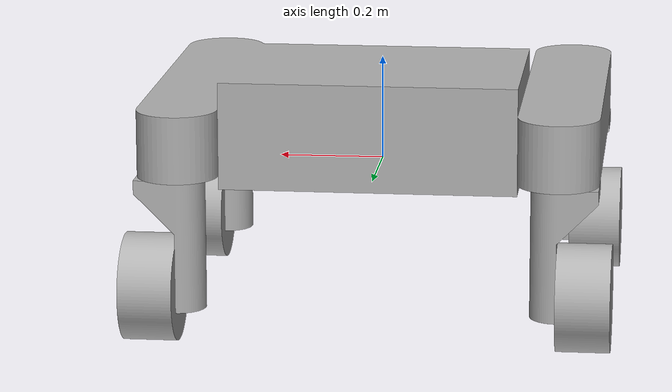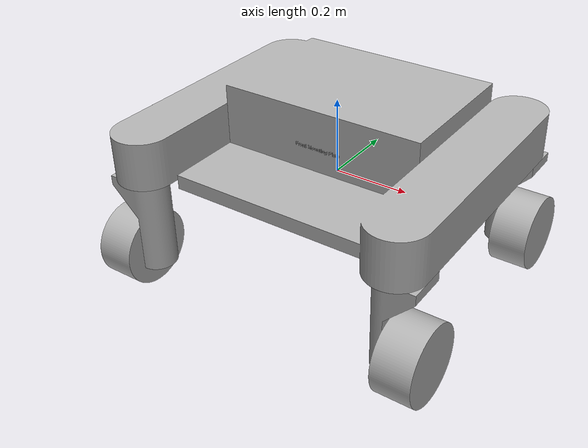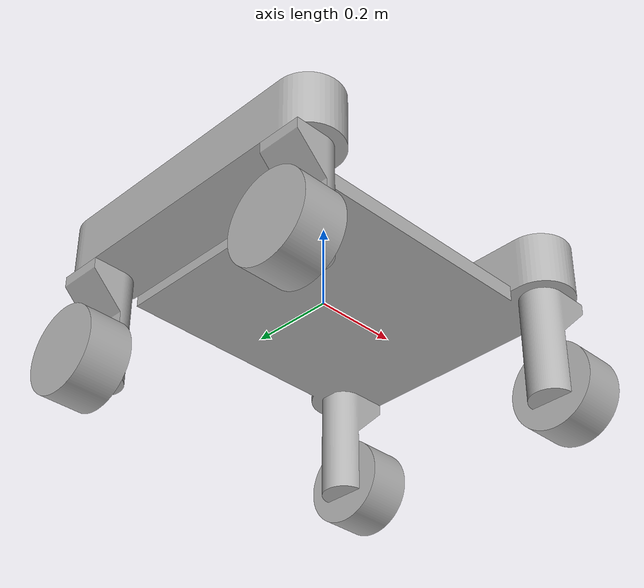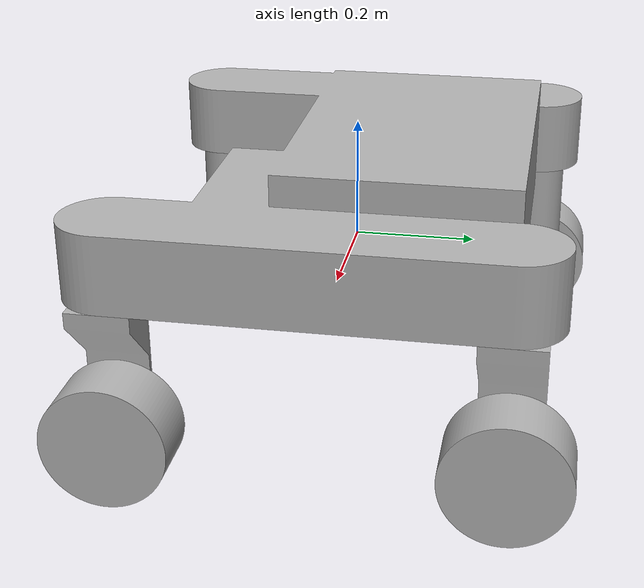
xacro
<?xml version="1.0" ?>
<robot name="rover_test" xmlns:xacro="http://www.ros.org/wiki/xacro">

<xacro:include filename="$(find rover_test_description)/urdf/materials.xacro" />
<xacro:include filename="$(find rover_test_description)/urdf/rover_test.gazebo" />

<link name="base_link">
  <inertial>
    <origin xyz="1.7662172446492366e-08 0.04237215152825712 0.09216107589120397" rpy="0 0 0"/>
    <mass value="595.1849542563896"/>
    <inertia ixx="19.500193" iyy="39.83973" izz="55.970633" ixy="1e-06" iyz="-0.807843" ixz="0.0"/>
  </inertial>
  <visual>
    <origin xyz="0 0 0" rpy="0 0 0"/>
    <geometry>
      <mesh filename="file://$(find rover_test_description)/meshes/base_link.stl" scale="0.001 0.001 0.001"/>
    </geometry>
    <material name="silver"/>
  </visual>
  <collision>
    <origin xyz="0 0 0" rpy="0 0 0"/>
    <geometry>
      <mesh filename="file://$(find rover_test_description)/meshes/base_link.stl" scale="0.001 0.001 0.001"/>
    </geometry>
  </collision>
</link>

<link name="front_left_wheel_link">
  <inertial>
    <origin xyz="0.0507999999999999 -1.1102230246251565e-16 5.551115123125783e-17" rpy="0 0 0"/>
    <mass value="25.864295489856012"/>
    <inertia ixx="0.133493" iyy="0.088995" izz="0.088995" ixy="-0.0" iyz="0.0" ixz="0.0"/>
  </inertial>
  <visual>
    <origin xyz="-0.3556 0.3175 0.1905" rpy="0 0 0"/>
    <geometry>
      <mesh filename="file://$(find rover_test_description)/meshes/wheel1_1.stl" scale="0.001 0.001 0.001"/>
    </geometry>
    <material name="silver"/>
  </visual>
  <collision>
    <origin xyz="-0.3556 0.3175 0.1905" rpy="0 0 0"/>
    <geometry>
      <mesh filename="file://$(find rover_test_description)/meshes/wheel1_1.stl" scale="0.001 0.001 0.001"/>
    </geometry>
  </collision>
</link>

<link name="rear_left_wheel_link">
  <inertial>
    <origin xyz="0.050799999999999956 1.1102230246251565e-16 3.885780586188048e-16" rpy="0 0 0"/>
    <mass value="25.864295489856012"/>
    <inertia ixx="0.133493" iyy="0.088995" izz="0.088995" ixy="0.0" iyz="0.0" ixz="0.0"/>
  </inertial>
  <visual>
    <origin xyz="-0.3556 -0.2921 0.1905" rpy="0 0 0"/>
    <geometry>
      <mesh filename="file://$(find rover_test_description)/meshes/wheel3_1.stl" scale="0.001 0.001 0.001"/>
    </geometry>
    <material name="silver"/>
  </visual>
  <collision>
    <origin xyz="-0.3556 -0.2921 0.1905" rpy="0 0 0"/>
    <geometry>
      <mesh filename="file://$(find rover_test_description)/meshes/wheel3_1.stl" scale="0.001 0.001 0.001"/>
    </geometry>
  </collision>
</link>

<link name="front_right_wheel_link">
  <inertial>
    <origin xyz="-0.050799999999999845 -3.6637359812630166e-15 -2.7755575615628914e-16" rpy="0 0 0"/>
    <mass value="25.864295489856012"/>
    <inertia ixx="0.133493" iyy="0.088995" izz="0.088995" ixy="0.0" iyz="-0.0" ixz="0.0"/>
  </inertial>
  <visual>
    <origin xyz="0.3556 0.3175 0.1905" rpy="0 0 0"/>
    <geometry>
      <mesh filename="file://$(find rover_test_description)/meshes/wheel2_1.stl" scale="0.001 0.001 0.001"/>
    </geometry>
    <material name="silver"/>
  </visual>
  <collision>
    <origin xyz="0.3556 0.3175 0.1905" rpy="0 0 0"/>
    <geometry>
      <mesh filename="file://$(find rover_test_description)/meshes/wheel2_1.stl" scale="0.001 0.001 0.001"/>
    </geometry>
  </collision>
</link>

<link name="rear_right_wheel_link">
  <inertial>
    <origin xyz="-0.05080000000000029 -3.7192471324942744e-15 1.6653345369377348e-16" rpy="0 0 0"/>
    <mass value="25.864295489856012"/>
    <inertia ixx="0.133493" iyy="0.088995" izz="0.088995" ixy="0.0" iyz="0.0" ixz="0.0"/>
  </inertial>
  <visual>
    <origin xyz="0.3556 -0.2921 0.1905" rpy="0 0 0"/>
    <geometry>
      <mesh filename="file://$(find rover_test_description)/meshes/wheel4_1.stl" scale="0.001 0.001 0.001"/>
    </geometry>
    <material name="silver"/>
  </visual>
  <collision>
    <origin xyz="0.3556 -0.2921 0.1905" rpy="0 0 0"/>
    <geometry>
      <mesh filename="file://$(find rover_test_description)/meshes/wheel4_1.stl" scale="0.001 0.001 0.001"/>
    </geometry>
  </collision>
</link>

<link name="front_left_steer_link">
  <inertial>
    <origin xyz="-0.004588209054589121 -1.1102230246251565e-16 -0.0951512261261479" rpy="0 0 0"/>
    <mass value="11.71442300300121"/>
    <inertia ixx="0.072711" iyy="0.074344" izz="0.018661" ixy="0.0" iyz="-0.0" ixz="-0.013033"/>
  </inertial>
  <visual>
    <origin xyz="-0.3556 0.3175 -0.0254" rpy="0 0 0"/>
    <geometry>
      <mesh filename="file://$(find rover_test_description)/meshes/mount1_1.stl" scale="0.001 0.001 0.001"/>
    </geometry>
    <material name="silver"/>
  </visual>
  <collision>
    <origin xyz="-0.3556 0.3175 -0.0254" rpy="0 0 0"/>
    <geometry>
      <mesh filename="file://$(find rover_test_description)/meshes/mount1_1.stl" scale="0.001 0.001 0.001"/>
    </geometry>
  </collision>
</link>

<link name="front_right_steer_link">
  <inertial>
    <origin xyz="0.00458820905458901 5.551115123125783e-17 -0.09515122612614813" rpy="0 0 0"/>
    <mass value="11.714423003001206"/>
    <inertia ixx="0.072711" iyy="0.074344" izz="0.018661" ixy="0.0" iyz="0.0" ixz="0.013033"/>
  </inertial>
  <visual>
    <origin xyz="0.3556 0.3175 -0.0254" rpy="0 0 0"/>
    <geometry>
      <mesh filename="file://$(find rover_test_description)/meshes/mount2_1.stl" scale="0.001 0.001 0.001"/>
    </geometry>
    <material name="silver"/>
  </visual>
  <collision>
    <origin xyz="0.3556 0.3175 -0.0254" rpy="0 0 0"/>
    <geometry>
      <mesh filename="file://$(find rover_test_description)/meshes/mount2_1.stl" scale="0.001 0.001 0.001"/>
    </geometry>
  </collision>
</link>

<link name="rear_left_steer_link">
  <inertial>
    <origin xyz="-0.00458820905458901 1.1102230246251565e-16 -0.09515122612614782" rpy="0 0 0"/>
    <mass value="11.71442300300121"/>
    <inertia ixx="0.072711" iyy="0.074344" izz="0.018661" ixy="0.0" iyz="0.0" ixz="-0.013033"/>
  </inertial>
  <visual>
    <origin xyz="-0.3556 -0.2921 -0.0254" rpy="0 0 0"/>
    <geometry>
      <mesh filename="file://$(find rover_test_description)/meshes/mount3_1.stl" scale="0.001 0.001 0.001"/>
    </geometry>
    <material name="silver"/>
  </visual>
  <collision>
    <origin xyz="-0.3556 -0.2921 -0.0254" rpy="0 0 0"/>
    <geometry>
      <mesh filename="file://$(find rover_test_description)/meshes/mount3_1.stl" scale="0.001 0.001 0.001"/>
    </geometry>
  </collision>
</link>

<link name="rear_right_steer_link">
  <inertial>
    <origin xyz="0.004588209054588566 -5.551115123125783e-17 -0.09515122612614793" rpy="0 0 0"/>
    <mass value="11.71442300300121"/>
    <inertia ixx="0.072711" iyy="0.074344" izz="0.018661" ixy="0.0" iyz="0.0" ixz="0.013033"/>
  </inertial>
  <visual>
    <origin xyz="0.3556 -0.2921 -0.0254" rpy="0 0 0"/>
    <geometry>
      <mesh filename="file://$(find rover_test_description)/meshes/mount4_1.stl" scale="0.001 0.001 0.001"/>
    </geometry>
    <material name="silver"/>
  </visual>
  <collision>
    <origin xyz="0.3556 -0.2921 -0.0254" rpy="0 0 0"/>
    <geometry>
      <mesh filename="file://$(find rover_test_description)/meshes/mount4_1.stl" scale="0.001 0.001 0.001"/>
    </geometry>
  </collision>
</link>

<joint name="front_left_wheel_joint" type="continuous">
  <origin xyz="0.0 0.0 -0.2159" rpy="0 0 0"/>
  <parent link="front_left_steer_link"/>
  <child link="front_left_wheel_link"/>
  <axis xyz="1.0 0.0 0.0"/>
</joint>

<joint name="rear_left_wheel_joint" type="continuous">
  <origin xyz="0.0 0.0 -0.2159" rpy="0 0 0"/>
  <parent link="rear_left_steer_link"/>
  <child link="rear_left_wheel_link"/>
  <axis xyz="1.0 0.0 0.0"/>
</joint>

<joint name="front_right_wheel_joint" type="continuous">
  <origin xyz="0.0 0.0 -0.2159" rpy="0 0 0"/>
  <parent link="front_right_steer_link"/>
  <child link="front_right_wheel_link"/>
  <axis xyz="1.0 0.0 0.0"/>
</joint>

<joint name="rear_right_wheel_joint" type="continuous">
  <origin xyz="0.0 0.0 -0.2159" rpy="0 0 0"/>
  <parent link="rear_right_steer_link"/>
  <child link="rear_right_wheel_link"/>
  <axis xyz="1.0 0.0 0.0"/>
</joint>

<joint name="front_left_steer_joint" type="continuous">
  <origin xyz="0.3556 -0.3175 0.0254" rpy="0 0 0"/>
  <parent link="base_link"/>
  <child link="front_left_steer_link"/>
  <axis xyz="0.0 0.0 1.0"/>
</joint>

<joint name="front_right_steer_joint" type="continuous">
  <origin xyz="-0.3556 -0.3175 0.0254" rpy="0 0 0"/>
  <parent link="base_link"/>
  <child link="front_right_steer_link"/>
  <axis xyz="0.0 0.0 1.0"/>
</joint>

<joint name="rear_left_steer_joint" type="continuous">
  <origin xyz="0.3556 0.2921 0.0254" rpy="0 0 0"/>
  <parent link="base_link"/>
  <child link="rear_left_steer_link"/>
  <axis xyz="0.0 0.0 1.0"/>
</joint>

<joint name="rear_right_steer_joint" type="continuous">
  <origin xyz="-0.3556 0.2921 0.0254" rpy="0 0 0"/>
  <parent link="base_link"/>
  <child link="rear_right_steer_link"/>
  <axis xyz="0.0 0.0 1.0"/>
</joint>

<xacro:macro name="steer_ros2_control" params="prefix">
  <joint name="${prefix}_steer_joint">
    <command_interface name="position"/>
    <state_interface name="position"/>
    <state_interface name="velocity"/>
  </joint>
</xacro:macro>

<xacro:macro name="wheel_ros2_control" params="prefix">
  <joint name="${prefix}_wheel_joint">
    <command_interface name="velocity"/>
    <state_interface name="velocity"/>
    <state_interface name="position"/>
  </joint>
</xacro:macro>

<ros2_control name="gz_ros2_control_system" type="system">
  <hardware>
    <plugin>gz_ros2_control/GazeboSimSystem</plugin>
  </hardware>
  <xacro:steer_ros2_control prefix="rear_left"/>
  <xacro:wheel_ros2_control prefix="rear_left"/>
  <xacro:steer_ros2_control prefix="front_left"/>
  <xacro:wheel_ros2_control prefix="front_left"/>
  <xacro:steer_ros2_control prefix="rear_right"/>
  <xacro:wheel_ros2_control prefix="rear_right"/>
  <xacro:steer_ros2_control prefix="front_right"/>
  <xacro:wheel_ros2_control prefix="front_right"/>
</ros2_control>

<gazebo>
  <plugin filename="gz_ros2_control-system" name="gz_ros2_control::GazeboSimROS2ControlPlugin">
    <parameters>$(find rover_test_description)/config/rover_test_controllers.yaml</parameters>
  </plugin>
</gazebo>

</robot>

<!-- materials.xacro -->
<robot name="rover_test" xmlns:xacro="http://www.ros.org/wiki/xacro" >

<material name="silver">
  <color rgba="0.700 0.700 0.700 1.000"/>
</material>

</robot>

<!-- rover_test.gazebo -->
<robot name="rover_test" xmlns:xacro="http://www.ros.org/wiki/xacro" >

<xacro:property name="body_color" value="Gazebo/Silver" />

<gazebo reference="base_link">
  <material>${body_color}</material>
  <mu1>0.2</mu1>
  <mu2>0.2</mu2>
  <self_collide>true</self_collide>
  <gravity>true</gravity>
</gazebo>

<xacro:macro name="module_surface" params="prefix">
  <gazebo reference="${prefix}_steer_link">
    <material>${body_color}</material>
    <mu1>0.2</mu1>
    <mu2>0.2</mu2>
    <self_collide>true</self_collide>
  </gazebo>
  <gazebo reference="${prefix}_wheel_link">
    <material>${body_color}</material>
    <mu1>0.2</mu1>
    <mu2>0.2</mu2>
    <self_collide>true</self_collide>
  </gazebo>
</xacro:macro>

<xacro:module_surface prefix="rear_left"/>
<xacro:module_surface prefix="front_left"/>
<xacro:module_surface prefix="rear_right"/>
<xacro:module_surface prefix="front_right"/>

</robot>
